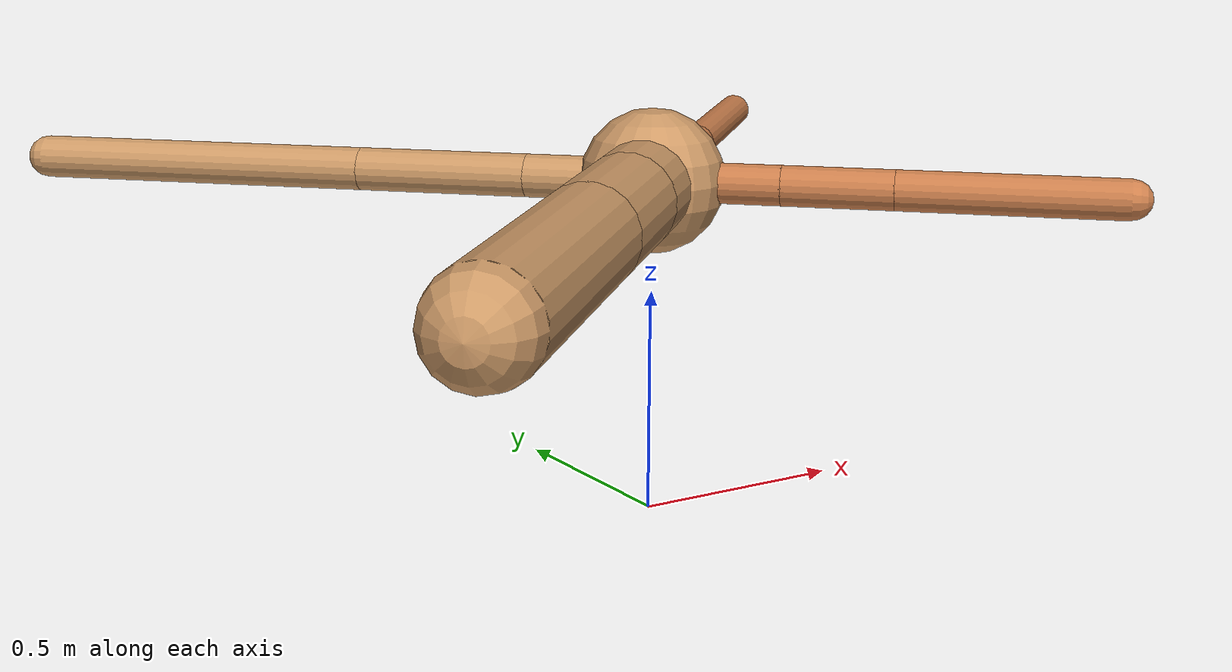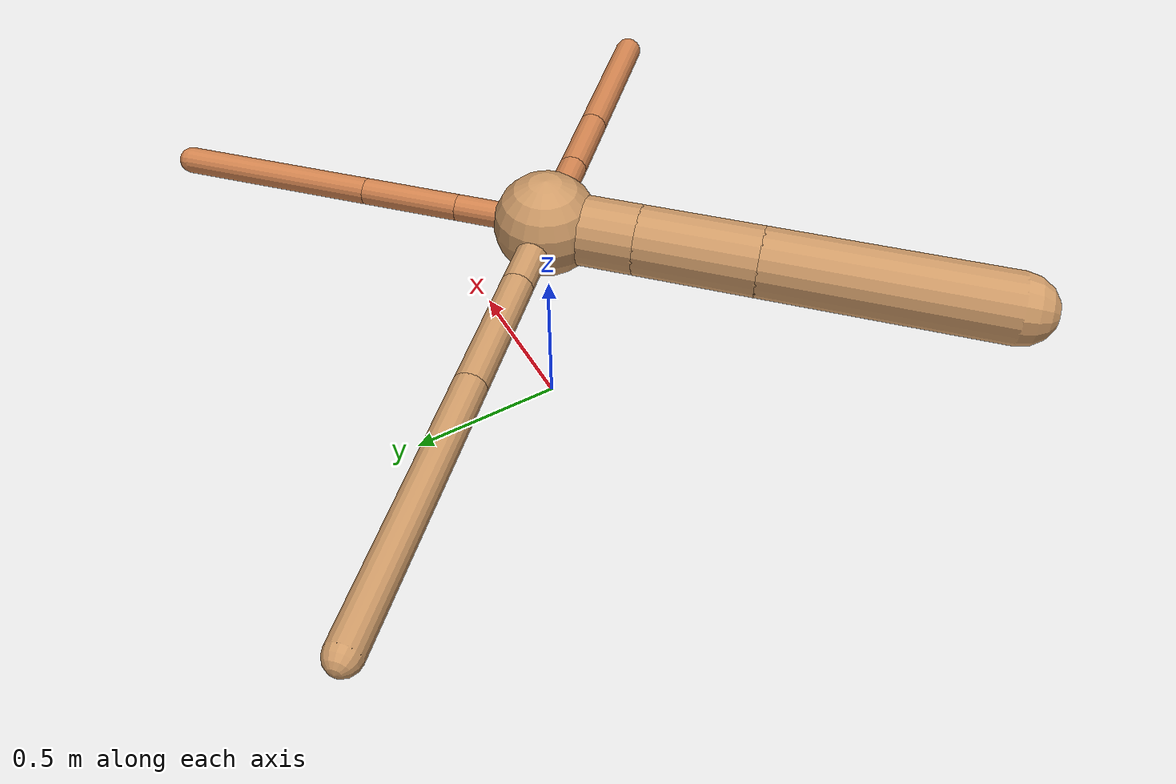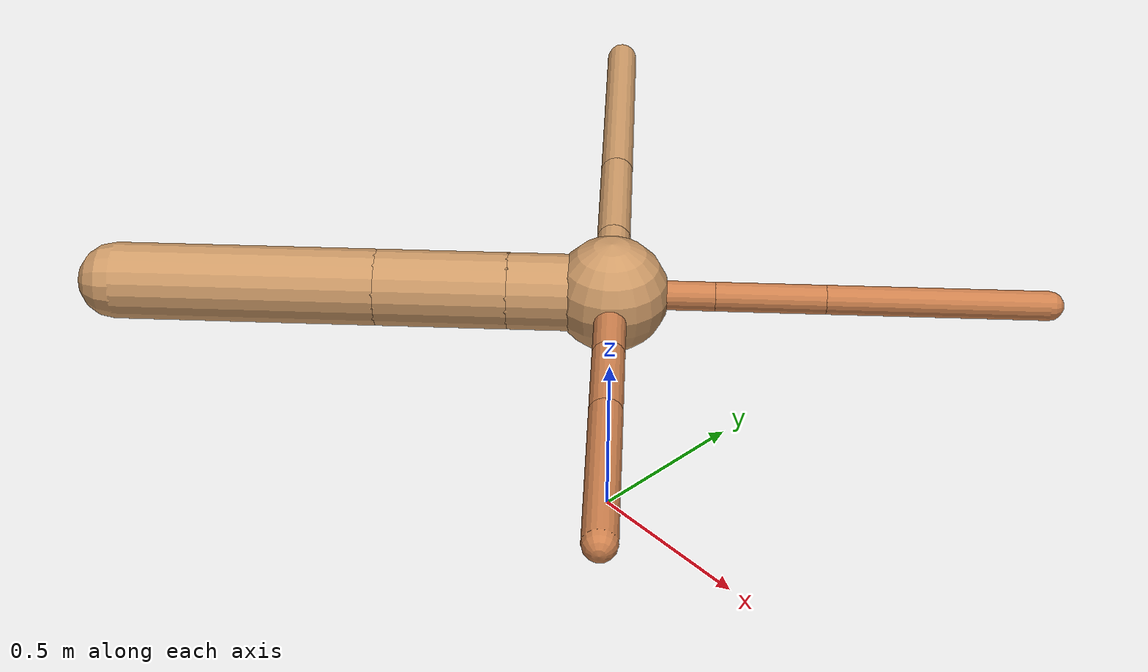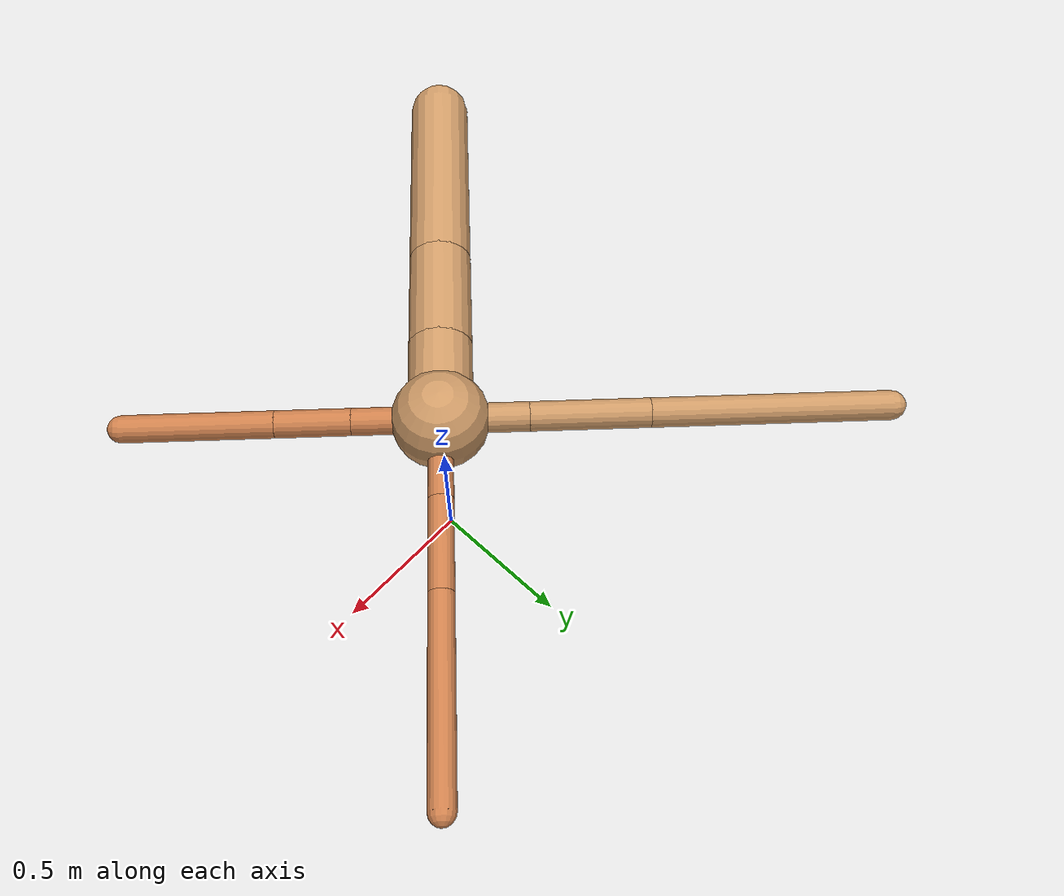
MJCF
<?xml version="1.0" ?>
<mujoco model="ant">

	<compiler angle="degree" coordinate="local" inertiafromgeom="true"/>

	<option integrator="RK4" timestep="0.01"/>

	<custom>

		<numeric data="0.0 0.0 0.55 1.0 0.0 0.0 0.0 0.0 1.0 0.0 -1.0 0.0 -1.0 0.0 1.0" name="init_qpos"/>

	</custom>

	<default>

		<joint armature="1" damping="1" limited="true"/>

		<geom conaffinity="0" condim="3" density="5.0" friction="1.5 0.1 0.1" margin="0.01" rgba="0.8 0.6 0.4 1"/>

	</default>

	<worldbody>

		<body name="torso" pos="0 0 0.75">

			<geom name="torso_geom" pos="0 0 0" size="0.15923597992393054" type="sphere"/>

			<!--joint armature="0" damping="0" limited="false" margin="0.01" name="root" pos="0 0 0" type="free"/-->

			<body name="front_left_leg" pos="0 0 0">

				<geom fromto="0 0 0 0.2 0.2 0" name="aux_1_geom" size="0.04040908899092891" type="capsule" rgba=".8 .5 .3 1"/>

				<body name="aux_1" pos="0.2 0.2 0">

					<joint axis="0 0 1" name="hip_1" pos="0.0 0.0 0.0" range="-40 40" type="hinge"/>

					<geom fromto="0 0 0 0.21268857453896636 0.21268857453896636 0" name="left_leg_geom" size="0.04040908899092891" type="capsule" rgba=".8 .5 .3 1"/>

					<body pos="0.21268857453896636 0.21268857453896636 0" name="front_left_foot">

						<joint axis="-1 1 0" name="ankle_1" pos="0.0 0.0 0.0" range="30 100" type="hinge"/>

						<geom fromto="0 0 0 0.4253771490779327 0.4253771490779327 0" name="left_ankle_geom" size="0.04040908899092891" type="capsule" rgba=".8 .5 .3 1"/>

					</body>

				</body>

			</body>

			<body name="front_right_leg" pos="0 0 0">

				<geom fromto="0 0 0 -0.2 0.2 0" name="aux_2_geom" size="0.0478958228623258" type="capsule"/>

				<body name="aux_2" pos="-0.2 0.2 0">

					<joint axis="0 0 1" name="hip_2" pos="0.0 0.0 0.0" range="-40 40" type="hinge"/>

					<geom fromto="0 0 0 -0.2730479686067468 0.2730479686067468 0" name="right_leg_geom" size="0.0478958228623258" type="capsule"/>

					<body pos="-0.2730479686067468 0.2730479686067468 0" name="front_right_foot">

						<joint axis="1 1 0" name="ankle_2" pos="0.0 0.0 0.0" range="-100 -30" type="hinge"/>

						<geom fromto="0 0 0 -0.5460959372134936 0.5460959372134936 0" name="right_ankle_geom" size="0.0478958228623258" type="capsule"/>

					</body>

				</body>

			</body>

			<body name="left_back_leg" pos="0 0 0">

				<geom fromto="0 0 0 -0.2 -0.2 0" name="aux_3_geom" size="0.10629794817309435" type="capsule"/>

				<body name="aux_3" pos="-0.2 -0.2 0">

					<joint axis="0 0 1" name="hip_3" pos="0.0 0.0 0.0" range="-40 40" type="hinge"/>

					<geom fromto="0 0 0 -0.2556322294816083 -0.2556322294816083 0" name="back_leg_geom" size="0.10629794817309435" type="capsule"/>

					<body pos="-0.2556322294816083 -0.2556322294816083 0" name="left_back_foot">

						<joint axis="-1 1 0" name="ankle_3" pos="0.0 0.0 0.0" range="-100 -30" type="hinge"/>

						<geom fromto="0 0 0 -0.5112644589632166 -0.5112644589632166 0" name="third_ankle_geom" size="0.10629794817309435" type="capsule"/>

					</body>

				</body>

			</body>

			<body name="right_back_leg" pos="0 0 0">

				<geom fromto="0 0 0 0.2 -0.2 0" name="aux_4_geom" size="0.04414554690645115" type="capsule" rgba=".8 .5 .3 1"/>

				<body name="aux_4" pos="0.2 -0.2 0">

					<joint axis="0 0 1" name="hip_4" pos="0.0 0.0 0.0" range="-40 40" type="hinge"/>

					<geom fromto="0 0 0 0.17092731951401904 -0.17092731951401904 0" name="rightback_leg_geom" size="0.04414554690645115" type="capsule" rgba=".8 .5 .3 1"/>

					<body pos="0.17092731951401904 -0.17092731951401904 0" name="right_back_foot">

						<joint axis="1 1 0" name="ankle_4" pos="0.0 0.0 0.0" range="30 100" type="hinge"/>

						<geom fromto="0 0 0 0.3418546390280381 -0.3418546390280381 0" name="fourth_ankle_geom" size="0.04414554690645115" type="capsule" rgba=".8 .5 .3 1"/>

					</body>

				</body>

			</body>

		</body>

	</worldbody>

	<actuator>

		<motor ctrllimited="true" ctrlrange="-1.0 1.0" joint="hip_4" gear="150"/>

		<motor ctrllimited="true" ctrlrange="-1.0 1.0" joint="ankle_4" gear="150"/>

		<motor ctrllimited="true" ctrlrange="-1.0 1.0" joint="hip_1" gear="150"/>

		<motor ctrllimited="true" ctrlrange="-1.0 1.0" joint="ankle_1" gear="150"/>

		<motor ctrllimited="true" ctrlrange="-1.0 1.0" joint="hip_2" gear="150"/>

		<motor ctrllimited="true" ctrlrange="-1.0 1.0" joint="ankle_2" gear="150"/>

		<motor ctrllimited="true" ctrlrange="-1.0 1.0" joint="hip_3" gear="150"/>

		<motor ctrllimited="true" ctrlrange="-1.0 1.0" joint="ankle_3" gear="150"/>

	</actuator>

</mujoco>
